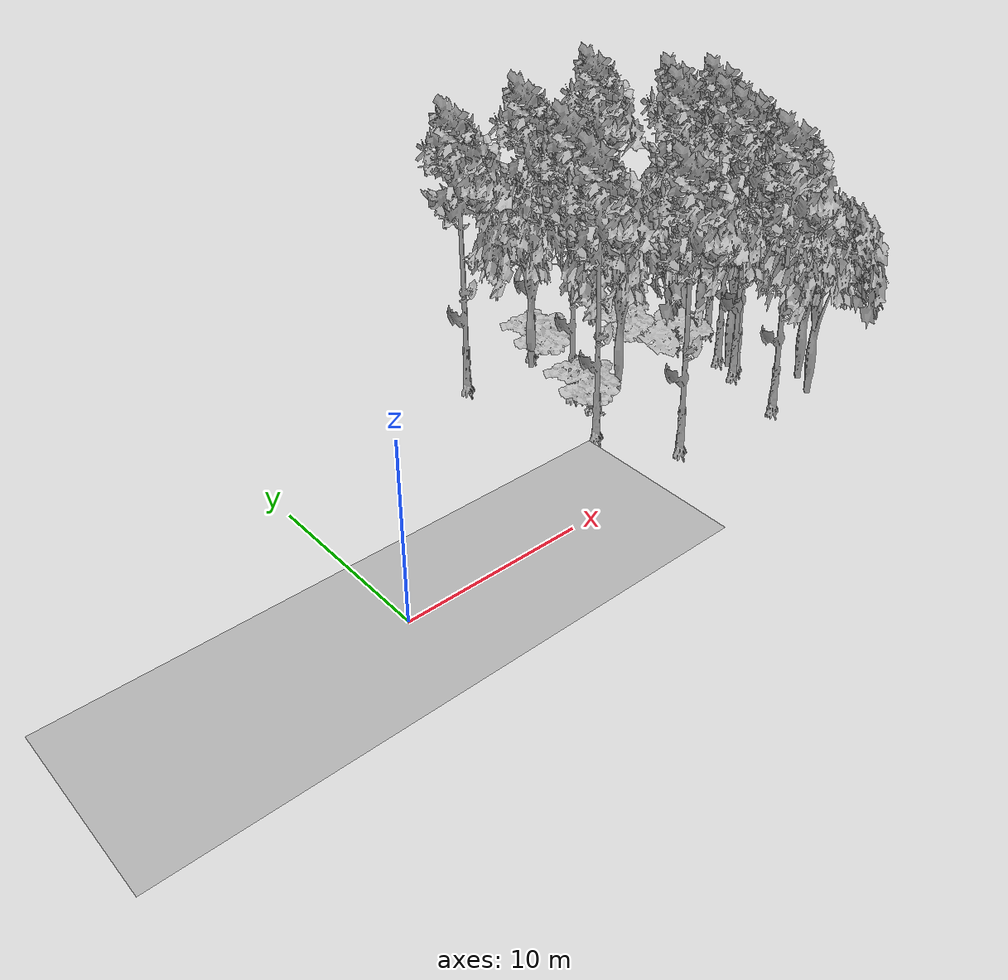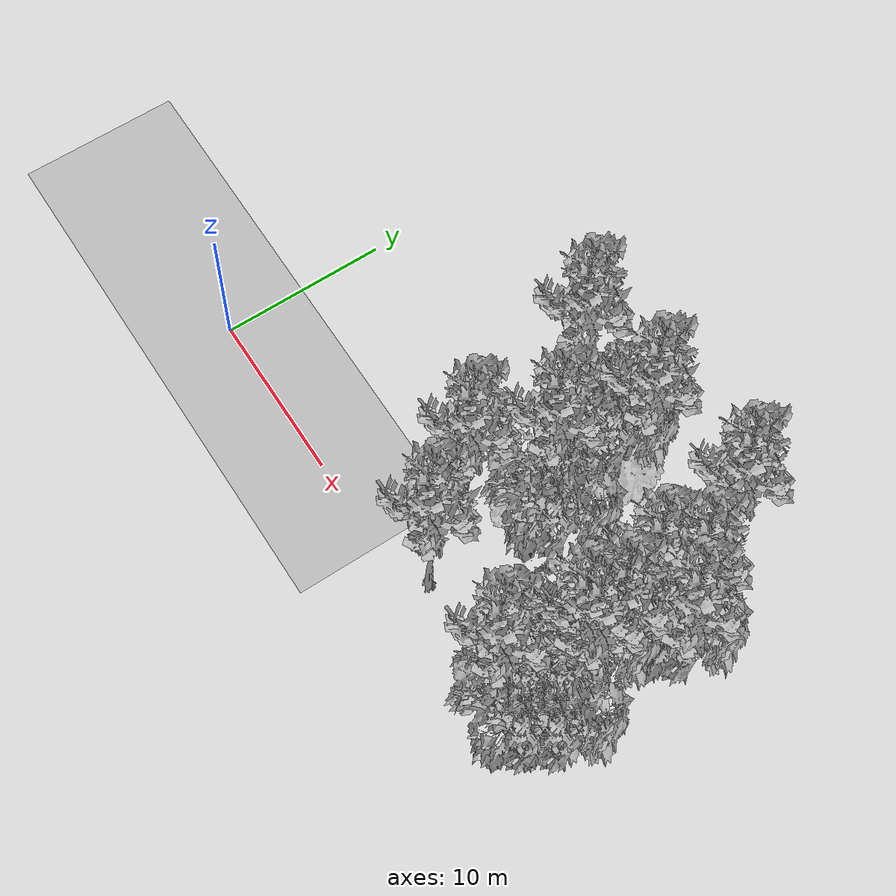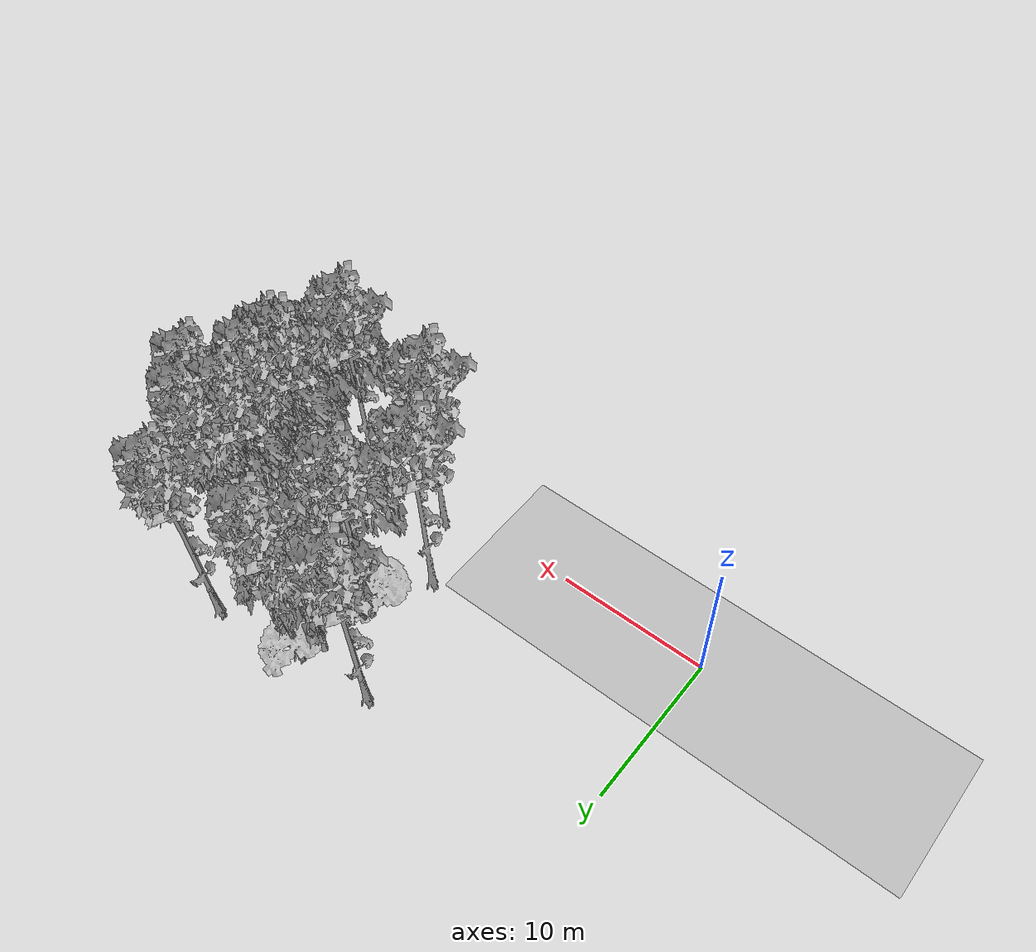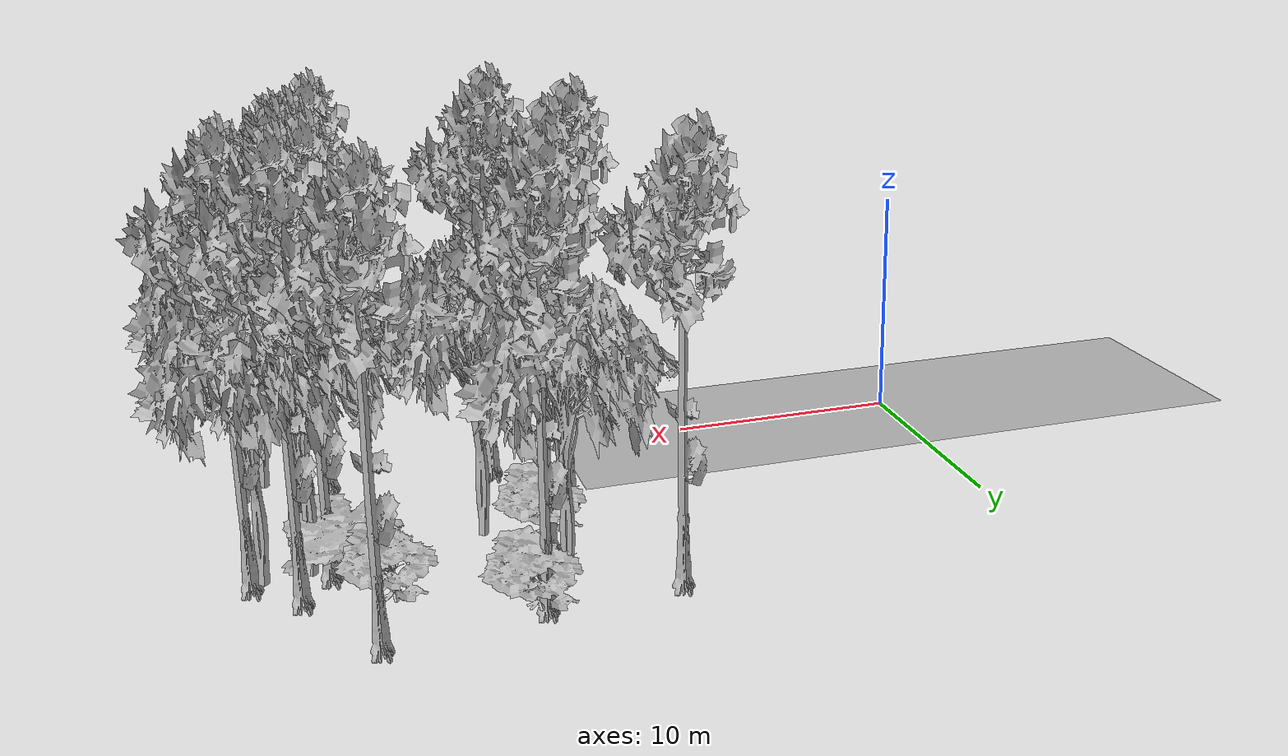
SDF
<sdf version="1.7">
 <world name="default">
  <model name="ground_plane">
   <static>1</static>
   <link name="link">
    <collision name="collision">
     <pose>-50 0 0 0 -0 0</pose>
     <geometry><plane><normal>0 0 1</normal><size>100 100</size></plane></geometry>
     <surface><contact><ode><min_depth>0.01</min_depth><max_vel>0</max_vel></ode></contact></surface>
    </collision>
    <visual name="grass">
     <cast_shadows>0</cast_shadows>
     <geometry>
      <mesh>
       <scale>0.5814285714285714 0.18142857142857144 0.1</scale>
       <uri>file://grass_plane/meshes/grass_plane.dae</uri>
      </mesh>
     </geometry>
    </visual>
   </link>
  </model>
  <model name="Tree 26">
   <static>1</static>
   <pose>16.46781186742119 5.183758551244221 0 1.57079 -0 0</pose>
   <link name="link">
    <collision name="collision">
     <geometry><mesh><scale>3.5 5 3.5</scale><uri>model://tree_9/meshes/tree_9.obj</uri></mesh></geometry>
    </collision>
    <visual name="visual">
     <geometry><mesh><scale>3.5 5 3.5</scale><uri>model://tree_9/meshes/tree_9.obj</uri></mesh></geometry>
    </visual>
   </link>
  </model>
  <model name="Tree 35">
   <static>1</static>
   <pose>19.354249676947177 13.855078429910566 0 1.57079 -0 0</pose>
   <link name="link">
    <collision name="collision">
     <geometry><mesh><scale>3.5 5 3.5</scale><uri>model://tree_9/meshes/tree_9.obj</uri></mesh></geometry>
    </collision>
    <visual name="visual">
     <geometry><mesh><scale>3.5 5 3.5</scale><uri>model://tree_9/meshes/tree_9.obj</uri></mesh></geometry>
    </visual>
   </link>
  </model>
  <model name="Tree 46">
   <static>1</static>
   <pose>27.43259729148032 4.736633962972046 0 1.57079 -0 0</pose>
   <link name="link">
    <collision name="collision">
     <geometry><mesh><scale>3.5 5 3.5</scale><uri>model://tree_9/meshes/tree_9.obj</uri></mesh></geometry>
    </collision>
    <visual name="visual">
     <geometry><mesh><scale>3.5 5 3.5</scale><uri>model://tree_9/meshes/tree_9.obj</uri></mesh></geometry>
    </visual>
   </link>
  </model>
  <model name="Tree 58">
   <static>1</static>
   <pose>27.40576640393988 6.129142607500544 0 1.57079 -0 0</pose>
   <link name="link">
    <collision name="collision">
     <geometry><mesh><scale>3.5 5 3.5</scale><uri>model://tree_9/meshes/tree_9.obj</uri></mesh></geometry>
    </collision>
    <visual name="visual">
     <geometry><mesh><scale>3.5 5 3.5</scale><uri>model://tree_9/meshes/tree_9.obj</uri></mesh></geometry>
    </visual>
   </link>
  </model>
  <model name="Tree 61">
   <static>1</static>
   <pose>29.15933652591984 1.5840856958395264 0 1.57079 -0 0</pose>
   <link name="link">
    <collision name="collision">
     <geometry><mesh><scale>3.5 5 3.5</scale><uri>model://tree_2/meshes/tree_2.obj</uri></mesh></geometry>
    </collision>
    <visual name="visual">
     <geometry><mesh><scale>3.5 5 3.5</scale><uri>model://tree_2/meshes/tree_2.obj</uri></mesh></geometry>
    </visual>
   </link>
  </model>
  <model name="Tree 89">
   <static>1</static>
   <pose>29.3549763327904 8.72708487267004 0 1.57079 -0 0</pose>
   <link name="link">
    <collision name="collision">
     <geometry><mesh><scale>3.5 5 3.5</scale><uri>model://tree_9/meshes/tree_9.obj</uri></mesh></geometry>
    </collision>
    <visual name="visual">
     <geometry><mesh><scale>3.5 5 3.5</scale><uri>model://tree_9/meshes/tree_9.obj</uri></mesh></geometry>
    </visual>
   </link>
  </model>
  <model name="Tree 124">
   <static>1</static>
   <pose>14.162760716932091 13.53461043275253 0 1.57079 -0 0</pose>
   <link name="link">
    <collision name="collision">
     <geometry><mesh><scale>3.5 5 3.5</scale><uri>model://tree_9/meshes/tree_9.obj</uri></mesh></geometry>
    </collision>
    <visual name="visual">
     <geometry><mesh><scale>3.5 5 3.5</scale><uri>model://tree_9/meshes/tree_9.obj</uri></mesh></geometry>
    </visual>
   </link>
  </model>
  <model name="Tree 129">
   <static>1</static>
   <pose>20.394927642066023 7.578805828465274 0 1.57079 -0 0</pose>
   <link name="link">
    <collision name="collision">
     <geometry><mesh><scale>3.5 5 3.5</scale><uri>model://tree_2/meshes/tree_2.obj</uri></mesh></geometry>
    </collision>
    <visual name="visual">
     <geometry><mesh><scale>3.5 5 3.5</scale><uri>model://tree_2/meshes/tree_2.obj</uri></mesh></geometry>
    </visual>
   </link>
  </model>
  <model name="Tree 130">
   <static>1</static>
   <pose>26.036751403765805 8.306208109836074 0 1.57079 -0 0</pose>
   <link name="link">
    <collision name="collision">
     <geometry><mesh><scale>3 2 3</scale><uri>model://tree_3/meshes/tree_3.obj</uri></mesh></geometry>
    </collision>
    <visual name="visual">
     <geometry><mesh><scale>3 2 3</scale><uri>model://tree_3/meshes/tree_3.obj</uri></mesh></geometry>
    </visual>
   </link>
  </model>
  <model name="Tree 132">
   <static>1</static>
   <pose>26.822442656518106 4.430677894761491 0 1.57079 -0 0</pose>
   <link name="link">
    <collision name="collision">
     <geometry><mesh><scale>3.5 5 3.5</scale><uri>model://tree_9/meshes/tree_9.obj</uri></mesh></geometry>
    </collision>
    <visual name="visual">
     <geometry><mesh><scale>3.5 5 3.5</scale><uri>model://tree_9/meshes/tree_9.obj</uri></mesh></geometry>
    </visual>
   </link>
  </model>
  <model name="Tree 142">
   <static>1</static>
   <pose>18.194565951525945 8.993375337956678 0 1.57079 -0 0</pose>
   <link name="link">
    <collision name="collision">
     <geometry><mesh><scale>3.5 5 3.5</scale><uri>model://tree_9/meshes/tree_9.obj</uri></mesh></geometry>
    </collision>
    <visual name="visual">
     <geometry><mesh><scale>3.5 5 3.5</scale><uri>model://tree_9/meshes/tree_9.obj</uri></mesh></geometry>
    </visual>
   </link>
  </model>
  <model name="Tree 156">
   <static>1</static>
   <pose>28.786963989802516 9.050496975332798 0 1.57079 -0 0</pose>
   <link name="link">
    <collision name="collision">
     <geometry><mesh><scale>3.5 5 3.5</scale><uri>model://tree_2/meshes/tree_2.obj</uri></mesh></geometry>
    </collision>
    <visual name="visual">
     <geometry><mesh><scale>3.5 5 3.5</scale><uri>model://tree_2/meshes/tree_2.obj</uri></mesh></geometry>
    </visual>
   </link>
  </model>
  <model name="Tree 159">
   <static>1</static>
   <pose>18.245189151901783 12.701846837846421 0 1.57079 -0 0</pose>
   <link name="link">
    <collision name="collision">
     <geometry><mesh><scale>3.5 5 3.5</scale><uri>model://tree_2/meshes/tree_2.obj</uri></mesh></geometry>
    </collision>
    <visual name="visual">
     <geometry><mesh><scale>3.5 5 3.5</scale><uri>model://tree_2/meshes/tree_2.obj</uri></mesh></geometry>
    </visual>
   </link>
  </model>
  <model name="Tree 182">
   <static>1</static>
   <pose>28.29848487427364 0.21058634484844063 0 1.57079 -0 0</pose>
   <link name="link">
    <collision name="collision">
     <geometry><mesh><scale>3.5 5 3.5</scale><uri>model://tree_2/meshes/tree_2.obj</uri></mesh></geometry>
    </collision>
    <visual name="visual">
     <geometry><mesh><scale>3.5 5 3.5</scale><uri>model://tree_2/meshes/tree_2.obj</uri></mesh></geometry>
    </visual>
   </link>
  </model>
  <model name="Tree 186">
   <static>1</static>
   <pose>27.02659620855792 8.836669192525058 0 1.57079 -0 0</pose>
   <link name="link">
    <collision name="collision">
     <geometry><mesh><scale>3.5 5 3.5</scale><uri>model://tree_2/meshes/tree_2.obj</uri></mesh></geometry>
    </collision>
    <visual name="visual">
     <geometry><mesh><scale>3.5 5 3.5</scale><uri>model://tree_2/meshes/tree_2.obj</uri></mesh></geometry>
    </visual>
   </link>
  </model>
  <model name="Tree 215">
   <static>1</static>
   <pose>27.649537716862298 10.479839534454978 0 1.57079 -0 0</pose>
   <link name="link">
    <collision name="collision">
     <geometry><mesh><scale>3.5 5 3.5</scale><uri>model://tree_9/meshes/tree_9.obj</uri></mesh></geometry>
    </collision>
    <visual name="visual">
     <geometry><mesh><scale>3.5 5 3.5</scale><uri>model://tree_9/meshes/tree_9.obj</uri></mesh></geometry>
    </visual>
   </link>
  </model>
  <model name="Tree 240">
   <static>1</static>
   <pose>19.62555117758599 13.741295101882347 0 1.57079 -0 0</pose>
   <link name="link">
    <collision name="collision">
     <geometry><mesh><scale>4 2.5 4</scale><uri>model://tree_1/meshes/tree_1.obj</uri></mesh></geometry>
    </collision>
    <visual name="visual">
     <geometry><mesh><scale>4 2.5 4</scale><uri>model://tree_1/meshes/tree_1.obj</uri></mesh></geometry>
    </visual>
   </link>
  </model>
  <model name="Tree 250">
   <static>1</static>
   <pose>26.475091214252345 8.787581085393406 0 1.57079 -0 0</pose>
   <link name="link">
    <collision name="collision">
     <geometry><mesh><scale>3.5 5 3.5</scale><uri>model://tree_9/meshes/tree_9.obj</uri></mesh></geometry>
    </collision>
    <visual name="visual">
     <geometry><mesh><scale>3.5 5 3.5</scale><uri>model://tree_9/meshes/tree_9.obj</uri></mesh></geometry>
    </visual>
   </link>
  </model>
  <model name="Tree 251">
   <static>1</static>
   <pose>24.462367943809696 11.433215379077737 0 1.57079 -0 0</pose>
   <link name="link">
    <collision name="collision">
     <geometry><mesh><scale>4 2.5 4</scale><uri>model://tree_1/meshes/tree_1.obj</uri></mesh></geometry>
    </collision>
    <visual name="visual">
     <geometry><mesh><scale>4 2.5 4</scale><uri>model://tree_1/meshes/tree_1.obj</uri></mesh></geometry>
    </visual>
   </link>
  </model>
  <model name="Tree 255">
   <static>1</static>
   <pose>18.068140594725364 8.030489845201384 0 1.57079 -0 0</pose>
   <link name="link">
    <collision name="collision">
     <geometry><mesh><scale>4 2.5 4</scale><uri>model://tree_1/meshes/tree_1.obj</uri></mesh></geometry>
    </collision>
    <visual name="visual">
     <geometry><mesh><scale>4 2.5 4</scale><uri>model://tree_1/meshes/tree_1.obj</uri></mesh></geometry>
    </visual>
   </link>
  </model>
  <model name="Tree 264">
   <static>1</static>
   <pose>25.77072231841018 0.5586674766342323 0 1.57079 -0 0</pose>
   <link name="link">
    <collision name="collision">
     <geometry><mesh><scale>3.5 5 3.5</scale><uri>model://tree_9/meshes/tree_9.obj</uri></mesh></geometry>
    </collision>
    <visual name="visual">
     <geometry><mesh><scale>3.5 5 3.5</scale><uri>model://tree_9/meshes/tree_9.obj</uri></mesh></geometry>
    </visual>
   </link>
  </model>
  <model name="Tree 275">
   <static>1</static>
   <pose>27.040418408092805 5.102544923805912 0 1.57079 -0 0</pose>
   <link name="link">
    <collision name="collision">
     <geometry><mesh><scale>3.5 5 3.5</scale><uri>model://tree_2/meshes/tree_2.obj</uri></mesh></geometry>
    </collision>
    <visual name="visual">
     <geometry><mesh><scale>3.5 5 3.5</scale><uri>model://tree_2/meshes/tree_2.obj</uri></mesh></geometry>
    </visual>
   </link>
  </model>
  <model name="Tree 276">
   <static>1</static>
   <pose>25.341844976363248 14.692232764827047 0 1.57079 -0 0</pose>
   <link name="link">
    <collision name="collision">
     <geometry><mesh><scale>3.5 5 3.5</scale><uri>model://tree_9/meshes/tree_9.obj</uri></mesh></geometry>
    </collision>
    <visual name="visual">
     <geometry><mesh><scale>3.5 5 3.5</scale><uri>model://tree_9/meshes/tree_9.obj</uri></mesh></geometry>
    </visual>
   </link>
  </model>
  <model name="Tree 278">
   <static>1</static>
   <pose>18.942091617862857 1.2508651333074354 0 1.57079 -0 0</pose>
   <link name="link">
    <collision name="collision">
     <geometry><mesh><scale>3.5 5 3.5</scale><uri>model://tree_9/meshes/tree_9.obj</uri></mesh></geometry>
    </collision>
    <visual name="visual">
     <geometry><mesh><scale>3.5 5 3.5</scale><uri>model://tree_9/meshes/tree_9.obj</uri></mesh></geometry>
    </visual>
   </link>
  </model>
  <model name="Bush 2">
   <static>1</static>
   <pose>17.714593052270885 6.655195204509106 0 1.57079 -0 0</pose>
   <link name="link">
    <collision name="collision">
     <geometry><mesh><scale>2 2 2</scale><uri>model://bush_2/meshes/bush_2.obj</uri></mesh></geometry>
     <surface><contact><collide_without_contact>false</collide_without_contact></contact></surface>
    </collision>
    <visual name="visual">
     <geometry><mesh><scale>2 2 2</scale><uri>model://bush_2/meshes/bush_2.obj</uri></mesh></geometry>
    </visual>
   </link>
  </model>
 </world>
</sdf>
